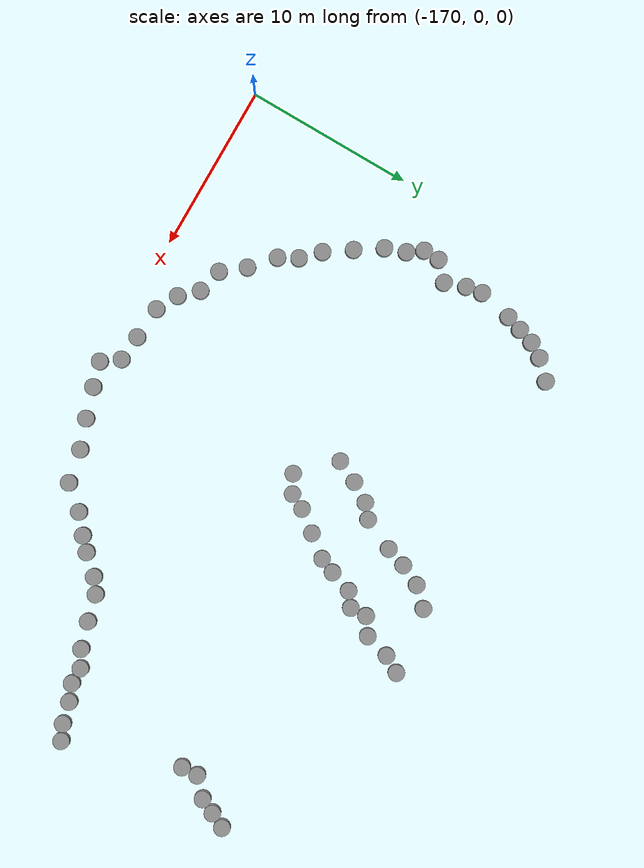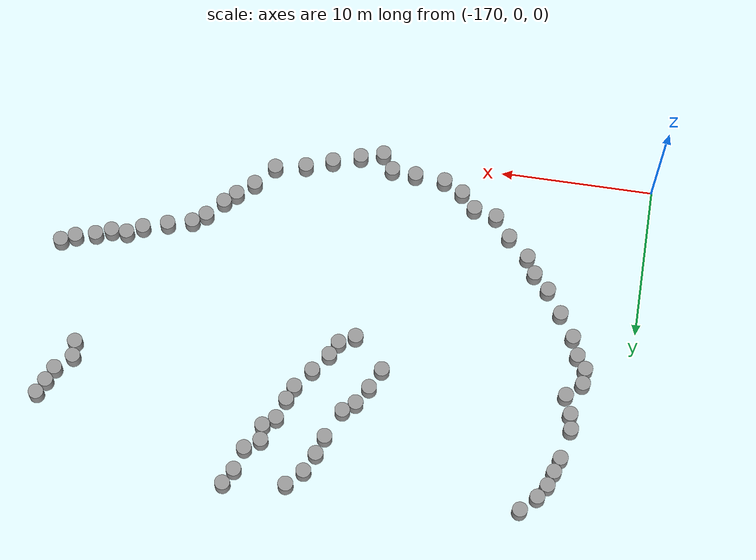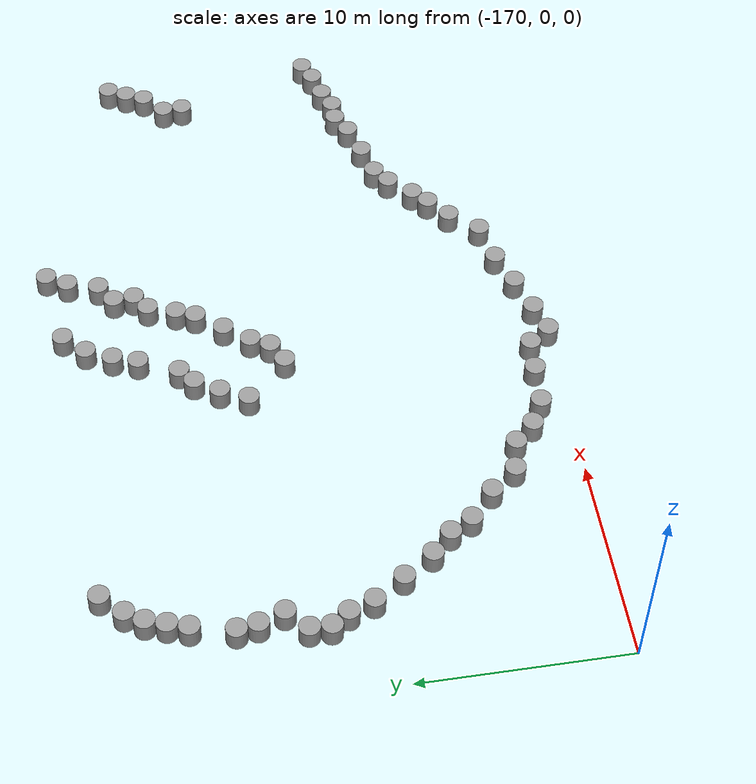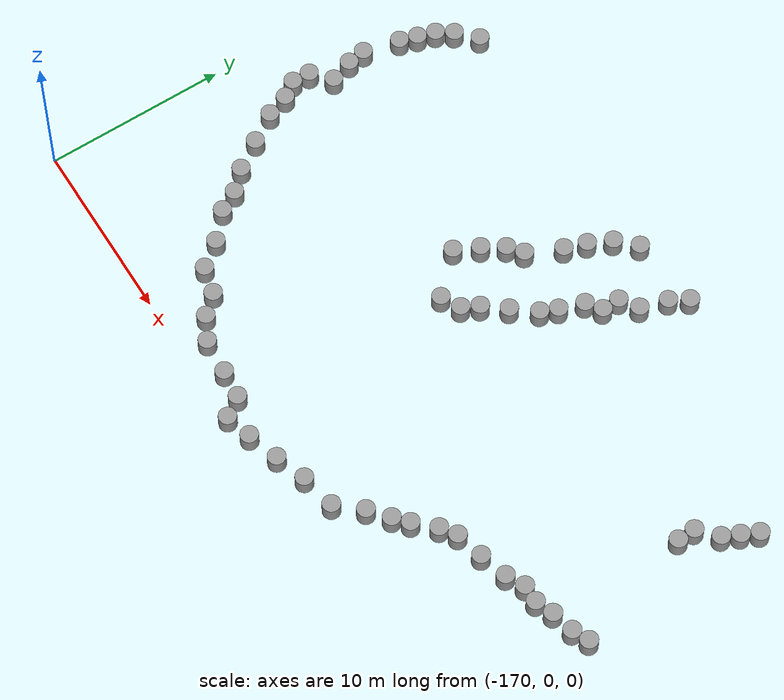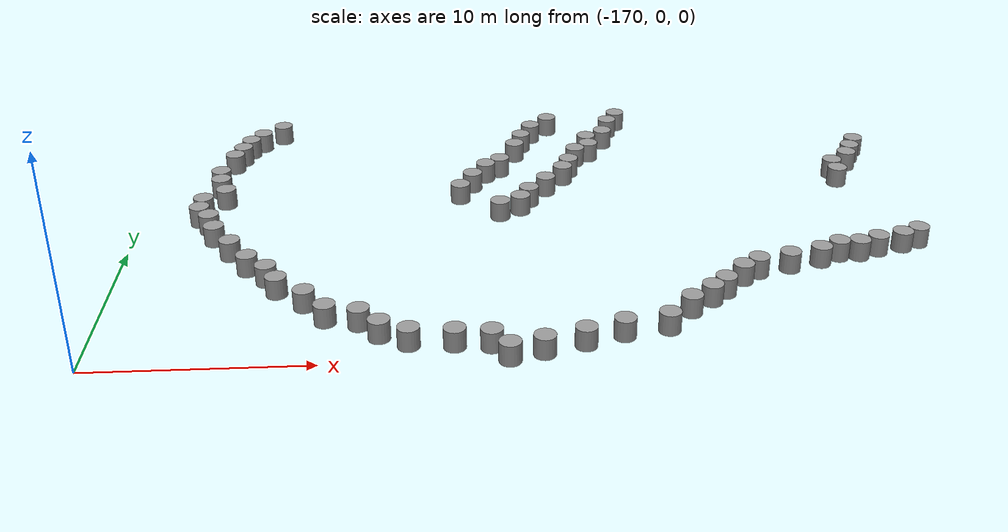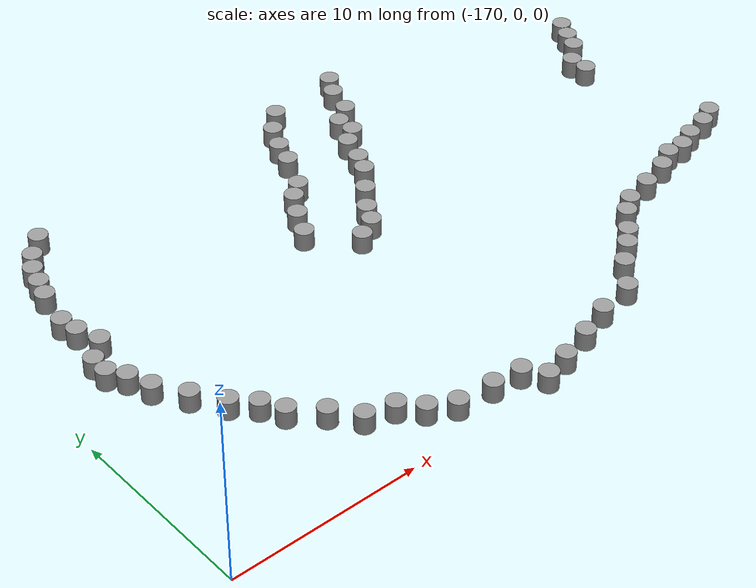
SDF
<sdf version="1.7">
 <world name="default">
  <model name="unit_cylinder_85_clone_244_clone_45">
   <pose>-149 23.4898 0.45 0 -0 7e-05</pose>
   <link name="link">
    <inertial>
     <mass>1</mass>
     <inertia><ixx>0.145833</ixx><ixy>0</ixy><ixz>0</ixz><iyy>0.145833</iyy><iyz>0</iyz><izz>0.125</izz></inertia>
    </inertial>
    <collision name="collision">
     <geometry><cylinder><radius>0.5</radius><length>1</length></cylinder></geometry>
    </collision>
    <visual name="visual">
     <geometry><cylinder><radius>0.5</radius><length>1</length></cylinder></geometry>
     <material>
      <script><name>Gazebo/Grey</name><uri>file://media/materials/scripts/gazebo.material</uri></script>
     </material>
    </visual>
   </link>
  </model>
  <model name="unit_cylinder_85_clone_244_clone_46">
   <pose>-150 22.4578 0.449998 -3e-06 -4e-06 0.000351</pose>
   <link name="link">
    <inertial>
     <mass>1</mass>
     <inertia><ixx>0.145833</ixx><ixy>0</ixy><ixz>0</ixz><iyy>0.145833</iyy><iyz>0</iyz><izz>0.125</izz></inertia>
    </inertial>
    <collision name="collision">
     <geometry><cylinder><radius>0.5</radius><length>1</length></cylinder></geometry>
    </collision>
    <visual name="visual">
     <geometry><cylinder><radius>0.5</radius><length>1</length></cylinder></geometry>
     <material>
      <script><name>Gazebo/Grey</name><uri>file://media/materials/scripts/gazebo.material</uri></script>
     </material>
    </visual>
   </link>
  </model>
  <model name="unit_cylinder_85_clone_244_clone_47">
   <pose>-150.603 21.2056 0.449998 -2e-06 -4e-06 0.000355</pose>
   <link name="link">
    <inertial>
     <mass>1</mass>
     <inertia><ixx>0.145833</ixx><ixy>0</ixy><ixz>0</ixz><iyy>0.145833</iyy><iyz>0</iyz><izz>0.125</izz></inertia>
    </inertial>
    <collision name="collision">
     <geometry><cylinder><radius>0.5</radius><length>1</length></cylinder></geometry>
    </collision>
    <visual name="visual">
     <geometry><cylinder><radius>0.5</radius><length>1</length></cylinder></geometry>
     <material>
      <script><name>Gazebo/Grey</name><uri>file://media/materials/scripts/gazebo.material</uri></script>
     </material>
    </visual>
   </link>
  </model>
  <model name="unit_cylinder_85_clone_244_clone_48">
   <pose>-151 20 0.449998 -3e-06 -2e-06 0.000351</pose>
   <link name="link">
    <inertial>
     <mass>1</mass>
     <inertia><ixx>0.145833</ixx><ixy>0</ixy><ixz>0</ixz><iyy>0.145833</iyy><iyz>0</iyz><izz>0.125</izz></inertia>
    </inertial>
    <collision name="collision">
     <geometry><cylinder><radius>0.5</radius><length>1</length></cylinder></geometry>
    </collision>
    <visual name="visual">
     <geometry><cylinder><radius>0.5</radius><length>1</length></cylinder></geometry>
     <material>
      <script><name>Gazebo/Grey</name><uri>file://media/materials/scripts/gazebo.material</uri></script>
     </material>
    </visual>
   </link>
  </model>
  <model name="unit_cylinder_85_clone_244_clone_49">
   <pose>-151.872 18.1045 0.45 0 -0 0.000316</pose>
   <link name="link">
    <inertial>
     <mass>1</mass>
     <inertia><ixx>0.145833</ixx><ixy>0</ixy><ixz>0</ixz><iyy>0.145833</iyy><iyz>0</iyz><izz>0.125</izz></inertia>
    </inertial>
    <collision name="collision">
     <geometry><cylinder><radius>0.5</radius><length>1</length></cylinder></geometry>
    </collision>
    <visual name="visual">
     <geometry><cylinder><radius>0.5</radius><length>1</length></cylinder></geometry>
     <material>
      <script><name>Gazebo/Grey</name><uri>file://media/materials/scripts/gazebo.material</uri></script>
     </material>
    </visual>
   </link>
  </model>
  <model name="unit_cylinder_85_clone_244_clone_50">
   <pose>-152.646 17.4708 0.449991 0 -0 0.000252</pose>
   <link name="link">
    <inertial>
     <mass>1</mass>
     <inertia><ixx>0.145833</ixx><ixy>0</ixy><ixz>0</ixz><iyy>0.145833</iyy><iyz>0</iyz><izz>0.125</izz></inertia>
    </inertial>
    <collision name="collision">
     <geometry><cylinder><radius>0.5</radius><length>1</length></cylinder></geometry>
    </collision>
    <visual name="visual">
     <geometry><cylinder><radius>0.5</radius><length>1</length></cylinder></geometry>
     <material>
      <script><name>Gazebo/Grey</name><uri>file://media/materials/scripts/gazebo.material</uri></script>
     </material>
    </visual>
   </link>
  </model>
  <model name="unit_cylinder_85_clone_244_clone_51">
   <pose>-153.359 16.3156 0.44999 0 -0 0.000351</pose>
   <link name="link">
    <inertial>
     <mass>1</mass>
     <inertia><ixx>0.145833</ixx><ixy>0</ixy><ixz>0</ixz><iyy>0.145833</iyy><iyz>0</iyz><izz>0.125</izz></inertia>
    </inertial>
    <collision name="collision">
     <geometry><cylinder><radius>0.5</radius><length>1</length></cylinder></geometry>
    </collision>
    <visual name="visual">
     <geometry><cylinder><radius>0.5</radius><length>1</length></cylinder></geometry>
     <material>
      <script><name>Gazebo/Grey</name><uri>file://media/materials/scripts/gazebo.material</uri></script>
     </material>
    </visual>
   </link>
  </model>
  <model name="unit_cylinder_85_clone_244_clone_52">
   <pose>-154 15 0.449998 -3e-06 -5e-06 0.000353</pose>
   <link name="link">
    <inertial>
     <mass>1</mass>
     <inertia><ixx>0.145833</ixx><ixy>0</ixy><ixz>0</ixz><iyy>0.145833</iyy><iyz>0</iyz><izz>0.125</izz></inertia>
    </inertial>
    <collision name="collision">
     <geometry><cylinder><radius>0.5</radius><length>1</length></cylinder></geometry>
    </collision>
    <visual name="visual">
     <geometry><cylinder><radius>0.5</radius><length>1</length></cylinder></geometry>
     <material>
      <script><name>Gazebo/Grey</name><uri>file://media/materials/scripts/gazebo.material</uri></script>
     </material>
    </visual>
   </link>
  </model>
  <model name="unit_cylinder_85_clone_244_clone_61">
   <pose>-145 24.0002 0.450001 -1e-06 -1e-06 0.000403</pose>
   <link name="link">
    <inertial>
     <mass>1</mass>
     <inertia><ixx>0.145833</ixx><ixy>0</ixy><ixz>0</ixz><iyy>0.145833</iyy><iyz>0</iyz><izz>0.125</izz></inertia>
    </inertial>
    <collision name="collision">
     <geometry><cylinder><radius>0.5</radius><length>1</length></cylinder></geometry>
    </collision>
    <visual name="visual">
     <geometry><cylinder><radius>0.5</radius><length>1</length></cylinder></geometry>
     <material>
      <script><name>Gazebo/Grey</name><uri>file://media/materials/scripts/gazebo.material</uri></script>
     </material>
    </visual>
   </link>
  </model>
  <model name="unit_cylinder_85_clone_244_clone_62">
   <pose>-145.571 23.0002 0.44999 0 -0 0.000516</pose>
   <link name="link">
    <inertial>
     <mass>1</mass>
     <inertia><ixx>0.145833</ixx><ixy>0</ixy><ixz>0</ixz><iyy>0.145833</iyy><iyz>0</iyz><izz>0.125</izz></inertia>
    </inertial>
    <collision name="collision">
     <geometry><cylinder><radius>0.5</radius><length>1</length></cylinder></geometry>
    </collision>
    <visual name="visual">
     <geometry><cylinder><radius>0.5</radius><length>1</length></cylinder></geometry>
     <material>
      <script><name>Gazebo/Grey</name><uri>file://media/materials/scripts/gazebo.material</uri></script>
     </material>
    </visual>
   </link>
  </model>
  <model name="unit_cylinder_85_clone_244_clone_63">
   <pose>-146 21.4918 0.450002 3e-06 -1e-06 0.000369</pose>
   <link name="link">
    <inertial>
     <mass>1</mass>
     <inertia><ixx>0.145833</ixx><ixy>0</ixy><ixz>0</ixz><iyy>0.145833</iyy><iyz>0</iyz><izz>0.125</izz></inertia>
    </inertial>
    <collision name="collision">
     <geometry><cylinder><radius>0.5</radius><length>1</length></cylinder></geometry>
    </collision>
    <visual name="visual">
     <geometry><cylinder><radius>0.5</radius><length>1</length></cylinder></geometry>
     <material>
      <script><name>Gazebo/Grey</name><uri>file://media/materials/scripts/gazebo.material</uri></script>
     </material>
    </visual>
   </link>
  </model>
  <model name="unit_cylinder_85_clone_244_clone_64">
   <pose>-146.968 20.8161 0.45 0 -0 0.049705</pose>
   <link name="link">
    <inertial>
     <mass>1</mass>
     <inertia><ixx>0.145833</ixx><ixy>0</ixy><ixz>0</ixz><iyy>0.145833</iyy><iyz>0</iyz><izz>0.125</izz></inertia>
    </inertial>
    <collision name="collision">
     <geometry><cylinder><radius>0.5</radius><length>1</length></cylinder></geometry>
    </collision>
    <visual name="visual">
     <geometry><cylinder><radius>0.5</radius><length>1</length></cylinder></geometry>
     <material>
      <script><name>Gazebo/Grey</name><uri>file://media/materials/scripts/gazebo.material</uri></script>
     </material>
    </visual>
   </link>
  </model>
  <model name="unit_cylinder_85_clone_244_clone_65">
   <pose>-146.931 19.8134 0.449998 2e-06 4e-06 -0.214574</pose>
   <link name="link">
    <inertial>
     <mass>1</mass>
     <inertia><ixx>0.145833</ixx><ixy>0</ixy><ixz>0</ixz><iyy>0.145833</iyy><iyz>0</iyz><izz>0.125</izz></inertia>
    </inertial>
    <collision name="collision">
     <geometry><cylinder><radius>0.5</radius><length>1</length></cylinder></geometry>
    </collision>
    <visual name="visual">
     <geometry><cylinder><radius>0.5</radius><length>1</length></cylinder></geometry>
     <material>
      <script><name>Gazebo/Grey</name><uri>file://media/materials/scripts/gazebo.material</uri></script>
     </material>
    </visual>
   </link>
  </model>
  <model name="unit_cylinder_85_clone_244_clone_66">
   <pose>-147.726 19.206 0.45 0 -0 0.053961</pose>
   <link name="link">
    <inertial>
     <mass>1</mass>
     <inertia><ixx>0.145833</ixx><ixy>0</ixy><ixz>0</ixz><iyy>0.145833</iyy><iyz>0</iyz><izz>0.125</izz></inertia>
    </inertial>
    <collision name="collision">
     <geometry><cylinder><radius>0.5</radius><length>1</length></cylinder></geometry>
    </collision>
    <visual name="visual">
     <geometry><cylinder><radius>0.5</radius><length>1</length></cylinder></geometry>
     <material>
      <script><name>Gazebo/Grey</name><uri>file://media/materials/scripts/gazebo.material</uri></script>
     </material>
    </visual>
   </link>
  </model>
  <model name="unit_cylinder_85_clone_244_clone_67">
   <pose>-148.18 17.8627 0.449998 -3e-06 3e-06 0.000311</pose>
   <link name="link">
    <inertial>
     <mass>1</mass>
     <inertia><ixx>0.145833</ixx><ixy>0</ixy><ixz>0</ixz><iyy>0.145833</iyy><iyz>0</iyz><izz>0.125</izz></inertia>
    </inertial>
    <collision name="collision">
     <geometry><cylinder><radius>0.5</radius><length>1</length></cylinder></geometry>
    </collision>
    <visual name="visual">
     <geometry><cylinder><radius>0.5</radius><length>1</length></cylinder></geometry>
     <material>
      <script><name>Gazebo/Grey</name><uri>file://media/materials/scripts/gazebo.material</uri></script>
     </material>
    </visual>
   </link>
  </model>
  <model name="unit_cylinder_85_clone_244_clone_68">
   <pose>-148.566 16.9402 0.449998 1e-06 6e-06 0.00033</pose>
   <link name="link">
    <inertial>
     <mass>1</mass>
     <inertia><ixx>0.145833</ixx><ixy>0</ixy><ixz>0</ixz><iyy>0.145833</iyy><iyz>0</iyz><izz>0.125</izz></inertia>
    </inertial>
    <collision name="collision">
     <geometry><cylinder><radius>0.5</radius><length>1</length></cylinder></geometry>
    </collision>
    <visual name="visual">
     <geometry><cylinder><radius>0.5</radius><length>1</length></cylinder></geometry>
     <material>
      <script><name>Gazebo/Grey</name><uri>file://media/materials/scripts/gazebo.material</uri></script>
     </material>
    </visual>
   </link>
  </model>
  <model name="unit_cylinder_85_clone_244_clone_69">
   <pose>-149.548 15.6808 0.449998 -5e-06 0 0.00041</pose>
   <link name="link">
    <inertial>
     <mass>1</mass>
     <inertia><ixx>0.145833</ixx><ixy>0</ixy><ixz>0</ixz><iyy>0.145833</iyy><iyz>0</iyz><izz>0.125</izz></inertia>
    </inertial>
    <collision name="collision">
     <geometry><cylinder><radius>0.5</radius><length>1</length></cylinder></geometry>
    </collision>
    <visual name="visual">
     <geometry><cylinder><radius>0.5</radius><length>1</length></cylinder></geometry>
     <material>
      <script><name>Gazebo/Grey</name><uri>file://media/materials/scripts/gazebo.material</uri></script>
     </material>
    </visual>
   </link>
  </model>
  <model name="unit_cylinder_85_clone_244_clone_70">
   <pose>-150.479 14.4743 0.44999 0 -0 0.000424</pose>
   <link name="link">
    <inertial>
     <mass>1</mass>
     <inertia><ixx>0.145833</ixx><ixy>0</ixy><ixz>0</ixz><iyy>0.145833</iyy><iyz>0</iyz><izz>0.125</izz></inertia>
    </inertial>
    <collision name="collision">
     <geometry><cylinder><radius>0.5</radius><length>1</length></cylinder></geometry>
    </collision>
    <visual name="visual">
     <geometry><cylinder><radius>0.5</radius><length>1</length></cylinder></geometry>
     <material>
      <script><name>Gazebo/Grey</name><uri>file://media/materials/scripts/gazebo.material</uri></script>
     </material>
    </visual>
   </link>
  </model>
  <model name="unit_cylinder_85_clone_244_clone_71">
   <pose>-152 13.0001 0.44999 0 -0 0.000457</pose>
   <link name="link">
    <inertial>
     <mass>1</mass>
     <inertia><ixx>0.145833</ixx><ixy>0</ixy><ixz>0</ixz><iyy>0.145833</iyy><iyz>0</iyz><izz>0.125</izz></inertia>
    </inertial>
    <collision name="collision">
     <geometry><cylinder><radius>0.5</radius><length>1</length></cylinder></geometry>
    </collision>
    <visual name="visual">
     <geometry><cylinder><radius>0.5</radius><length>1</length></cylinder></geometry>
     <material>
      <script><name>Gazebo/Grey</name><uri>file://media/materials/scripts/gazebo.material</uri></script>
     </material>
    </visual>
   </link>
  </model>
  <model name="unit_cylinder_85_clone_244_clone_72">
   <pose>-150.955 13.5618 0.44999 0 -0 0.000478</pose>
   <link name="link">
    <inertial>
     <mass>1</mass>
     <inertia><ixx>0.145833</ixx><ixy>0</ixy><ixz>0</ixz><iyy>0.145833</iyy><iyz>0</iyz><izz>0.125</izz></inertia>
    </inertial>
    <collision name="collision">
     <geometry><cylinder><radius>0.5</radius><length>1</length></cylinder></geometry>
    </collision>
    <visual name="visual">
     <geometry><cylinder><radius>0.5</radius><length>1</length></cylinder></geometry>
     <material>
      <script><name>Gazebo/Grey</name><uri>file://media/materials/scripts/gazebo.material</uri></script>
     </material>
    </visual>
   </link>
  </model>
  <model name="unit_cylinder_85_clone_244_clone_76">
   <pose>-132.13 19.7573 0.45127 -3e-06 -3e-06 0.009833</pose>
   <link name="link">
    <inertial>
     <mass>1</mass>
     <inertia><ixx>0.145833</ixx><ixy>0</ixy><ixz>0</ixz><iyy>0.145833</iyy><iyz>0</iyz><izz>0.125</izz></inertia>
    </inertial>
    <collision name="collision">
     <geometry><cylinder><radius>0.5</radius><length>1</length></cylinder></geometry>
    </collision>
    <visual name="visual">
     <geometry><cylinder><radius>0.5</radius><length>1</length></cylinder></geometry>
     <material>
      <script><name>Gazebo/Grey</name><uri>file://media/materials/scripts/gazebo.material</uri></script>
     </material>
    </visual>
   </link>
  </model>
  <model name="unit_cylinder_85_clone_244_clone_77">
   <pose>-132.576 18.8518 0.451277 -0 -1e-06 0.027749</pose>
   <link name="link">
    <inertial>
     <mass>1</mass>
     <inertia><ixx>0.145833</ixx><ixy>0</ixy><ixz>0</ixz><iyy>0.145833</iyy><iyz>0</iyz><izz>0.125</izz></inertia>
    </inertial>
    <collision name="collision">
     <geometry><cylinder><radius>0.5</radius><length>1</length></cylinder></geometry>
    </collision>
    <visual name="visual">
     <geometry><cylinder><radius>0.5</radius><length>1</length></cylinder></geometry>
     <material>
      <script><name>Gazebo/Grey</name><uri>file://media/materials/scripts/gazebo.material</uri></script>
     </material>
    </visual>
   </link>
  </model>
  <model name="unit_cylinder_85_clone_244_clone_78">
   <pose>-133.002 17.946 0.451271 2e-06 2e-06 -0.000531</pose>
   <link name="link">
    <inertial>
     <mass>1</mass>
     <inertia><ixx>0.145833</ixx><ixy>0</ixy><ixz>0</ixz><iyy>0.145833</iyy><iyz>0</iyz><izz>0.125</izz></inertia>
    </inertial>
    <collision name="collision">
     <geometry><cylinder><radius>0.5</radius><length>1</length></cylinder></geometry>
    </collision>
    <visual name="visual">
     <geometry><cylinder><radius>0.5</radius><length>1</length></cylinder></geometry>
     <material>
      <script><name>Gazebo/Grey</name><uri>file://media/materials/scripts/gazebo.material</uri></script>
     </material>
    </visual>
   </link>
  </model>
  <model name="unit_cylinder_85_clone_244_clone_79">
   <pose>-134.037 16.9881 0.451282 -8e-06 -9e-06 -0.000137</pose>
   <link name="link">
    <inertial>
     <mass>1</mass>
     <inertia><ixx>0.145833</ixx><ixy>0</ixy><ixz>0</ixz><iyy>0.145833</iyy><iyz>0</iyz><izz>0.125</izz></inertia>
    </inertial>
    <collision name="collision">
     <geometry><cylinder><radius>0.5</radius><length>1</length></cylinder></geometry>
    </collision>
    <visual name="visual">
     <geometry><cylinder><radius>0.5</radius><length>1</length></cylinder></geometry>
     <material>
      <script><name>Gazebo/Grey</name><uri>file://media/materials/scripts/gazebo.material</uri></script>
     </material>
    </visual>
   </link>
  </model>
  <model name="unit_cylinder_85_clone_244_clone_80">
   <pose>-134 15.9888 0.451279 -9e-06 -9e-06 0.001202</pose>
   <link name="link">
    <inertial>
     <mass>1</mass>
     <inertia><ixx>0.145833</ixx><ixy>0</ixy><ixz>0</ixz><iyy>0.145833</iyy><iyz>0</iyz><izz>0.125</izz></inertia>
    </inertial>
    <collision name="collision">
     <geometry><cylinder><radius>0.5</radius><length>1</length></cylinder></geometry>
    </collision>
    <visual name="visual">
     <geometry><cylinder><radius>0.5</radius><length>1</length></cylinder></geometry>
     <material>
      <script><name>Gazebo/Grey</name><uri>file://media/materials/scripts/gazebo.material</uri></script>
     </material>
    </visual>
   </link>
  </model>
  <model name="unit_cylinder_85_clone_244_clone_86">
   <pose>-131.803 9.15012 0.451246 -3e-06 2e-06 -0.052648</pose>
   <link name="link">
    <inertial>
     <mass>1</mass>
     <inertia><ixx>0.145833</ixx><ixy>0</ixy><ixz>0</ixz><iyy>0.145833</iyy><iyz>0</iyz><izz>0.125</izz></inertia>
    </inertial>
    <collision name="collision">
     <geometry><cylinder><radius>0.5</radius><length>1</length></cylinder></geometry>
    </collision>
    <visual name="visual">
     <geometry><cylinder><radius>0.5</radius><length>1</length></cylinder></geometry>
     <material>
      <script><name>Gazebo/Grey</name><uri>file://media/materials/scripts/gazebo.material</uri></script>
     </material>
    </visual>
   </link>
  </model>
  <model name="unit_cylinder_85_clone_244_clone_87">
   <pose>-132.711 8.72598 0.451246 0 3e-06 0.048735</pose>
   <link name="link">
    <inertial>
     <mass>1</mass>
     <inertia><ixx>0.145833</ixx><ixy>0</ixy><ixz>0</ixz><iyy>0.145833</iyy><iyz>0</iyz><izz>0.125</izz></inertia>
    </inertial>
    <collision name="collision">
     <geometry><cylinder><radius>0.5</radius><length>1</length></cylinder></geometry>
    </collision>
    <visual name="visual">
     <geometry><cylinder><radius>0.5</radius><length>1</length></cylinder></geometry>
     <material>
      <script><name>Gazebo/Grey</name><uri>file://media/materials/scripts/gazebo.material</uri></script>
     </material>
    </visual>
   </link>
  </model>
  <model name="unit_cylinder_85_clone_244_clone_88">
   <pose>-134 8.40413 0.451249 3e-06 5e-06 0.000381</pose>
   <link name="link">
    <inertial>
     <mass>1</mass>
     <inertia><ixx>0.145833</ixx><ixy>0</ixy><ixz>0</ixz><iyy>0.145833</iyy><iyz>0</iyz><izz>0.125</izz></inertia>
    </inertial>
    <collision name="collision">
     <geometry><cylinder><radius>0.5</radius><length>1</length></cylinder></geometry>
    </collision>
    <visual name="visual">
     <geometry><cylinder><radius>0.5</radius><length>1</length></cylinder></geometry>
     <material>
      <script><name>Gazebo/Grey</name><uri>file://media/materials/scripts/gazebo.material</uri></script>
     </material>
    </visual>
   </link>
  </model>
  <model name="unit_cylinder_85_clone_244_clone_89">
   <pose>-135 8 0.451247 -8e-06 -3e-06 0.000408</pose>
   <link name="link">
    <inertial>
     <mass>1</mass>
     <inertia><ixx>0.145833</ixx><ixy>0</ixy><ixz>0</ixz><iyy>0.145833</iyy><iyz>0</iyz><izz>0.125</izz></inertia>
    </inertial>
    <collision name="collision">
     <geometry><cylinder><radius>0.5</radius><length>1</length></cylinder></geometry>
    </collision>
    <visual name="visual">
     <geometry><cylinder><radius>0.5</radius><length>1</length></cylinder></geometry>
     <material>
      <script><name>Gazebo/Grey</name><uri>file://media/materials/scripts/gazebo.material</uri></script>
     </material>
    </visual>
   </link>
  </model>
  <model name="unit_cylinder_85_clone_244_clone_90">
   <pose>-136 7.99997 0.451239 2e-06 -1e-06 0.000262</pose>
   <link name="link">
    <inertial>
     <mass>1</mass>
     <inertia><ixx>0.145833</ixx><ixy>0</ixy><ixz>0</ixz><iyy>0.145833</iyy><iyz>0</iyz><izz>0.125</izz></inertia>
    </inertial>
    <collision name="collision">
     <geometry><cylinder><radius>0.5</radius><length>1</length></cylinder></geometry>
    </collision>
    <visual name="visual">
     <geometry><cylinder><radius>0.5</radius><length>1</length></cylinder></geometry>
     <material>
      <script><name>Gazebo/Grey</name><uri>file://media/materials/scripts/gazebo.material</uri></script>
     </material>
    </visual>
   </link>
  </model>
  <model name="unit_cylinder_85_clone_244_clone_91">
   <pose>-137 7.46964 0.451248 0 6e-06 0.000808</pose>
   <link name="link">
    <inertial>
     <mass>1</mass>
     <inertia><ixx>0.145833</ixx><ixy>0</ixy><ixz>0</ixz><iyy>0.145833</iyy><iyz>0</iyz><izz>0.125</izz></inertia>
    </inertial>
    <collision name="collision">
     <geometry><cylinder><radius>0.5</radius><length>1</length></cylinder></geometry>
    </collision>
    <visual name="visual">
     <geometry><cylinder><radius>0.5</radius><length>1</length></cylinder></geometry>
     <material>
      <script><name>Gazebo/Grey</name><uri>file://media/materials/scripts/gazebo.material</uri></script>
     </material>
    </visual>
   </link>
  </model>
  <model name="unit_cylinder_85_clone_244_clone_92">
   <pose>-138.58 7.00009 0.451243 0 -1e-06 0.000736</pose>
   <link name="link">
    <inertial>
     <mass>1</mass>
     <inertia><ixx>0.145833</ixx><ixy>0</ixy><ixz>0</ixz><iyy>0.145833</iyy><iyz>0</iyz><izz>0.125</izz></inertia>
    </inertial>
    <collision name="collision">
     <geometry><cylinder><radius>0.5</radius><length>1</length></cylinder></geometry>
    </collision>
    <visual name="visual">
     <geometry><cylinder><radius>0.5</radius><length>1</length></cylinder></geometry>
     <material>
      <script><name>Gazebo/Grey</name><uri>file://media/materials/scripts/gazebo.material</uri></script>
     </material>
    </visual>
   </link>
  </model>
  <model name="unit_cylinder_85_clone_244_clone_93">
   <pose>-140.163 6.59619 0.451238 0 -4e-06 0.000466</pose>
   <link name="link">
    <inertial>
     <mass>1</mass>
     <inertia><ixx>0.145833</ixx><ixy>0</ixy><ixz>0</ixz><iyy>0.145833</iyy><iyz>0</iyz><izz>0.125</izz></inertia>
    </inertial>
    <collision name="collision">
     <geometry><cylinder><radius>0.5</radius><length>1</length></cylinder></geometry>
    </collision>
    <visual name="visual">
     <geometry><cylinder><radius>0.5</radius><length>1</length></cylinder></geometry>
     <material>
      <script><name>Gazebo/Grey</name><uri>file://media/materials/scripts/gazebo.material</uri></script>
     </material>
    </visual>
   </link>
  </model>
  <model name="unit_cylinder_85_clone_244_clone_94">
   <pose>-141 5.99993 0.451259 2.7e-05 2.5e-05 -0.000386</pose>
   <link name="link">
    <inertial>
     <mass>1</mass>
     <inertia><ixx>0.145833</ixx><ixy>0</ixy><ixz>0</ixz><iyy>0.145833</iyy><iyz>0</iyz><izz>0.125</izz></inertia>
    </inertial>
    <collision name="collision">
     <geometry><cylinder><radius>0.5</radius><length>1</length></cylinder></geometry>
    </collision>
    <visual name="visual">
     <geometry><cylinder><radius>0.5</radius><length>1</length></cylinder></geometry>
     <material>
      <script><name>Gazebo/Grey</name><uri>file://media/materials/scripts/gazebo.material</uri></script>
     </material>
    </visual>
   </link>
  </model>
  <model name="unit_cylinder_85_clone_244_clone_95">
   <pose>-142.014 4.91533 0.451245 2.1e-05 2e-05 0.001099</pose>
   <link name="link">
    <inertial>
     <mass>1</mass>
     <inertia><ixx>0.145833</ixx><ixy>0</ixy><ixz>0</ixz><iyy>0.145833</iyy><iyz>0</iyz><izz>0.125</izz></inertia>
    </inertial>
    <collision name="collision">
     <geometry><cylinder><radius>0.5</radius><length>1</length></cylinder></geometry>
    </collision>
    <visual name="visual">
     <geometry><cylinder><radius>0.5</radius><length>1</length></cylinder></geometry>
     <material>
      <script><name>Gazebo/Grey</name><uri>file://media/materials/scripts/gazebo.material</uri></script>
     </material>
    </visual>
   </link>
  </model>
  <model name="unit_cylinder_85_clone_244_clone_96">
   <pose>-142.751 4.23773 0.451252 1.8e-05 1.7e-05 -0.001185</pose>
   <link name="link">
    <inertial>
     <mass>1</mass>
     <inertia><ixx>0.145833</ixx><ixy>0</ixy><ixz>0</ixz><iyy>0.145833</iyy><iyz>0</iyz><izz>0.125</izz></inertia>
    </inertial>
    <collision name="collision">
     <geometry><cylinder><radius>0.5</radius><length>1</length></cylinder></geometry>
    </collision>
    <visual name="visual">
     <geometry><cylinder><radius>0.5</radius><length>1</length></cylinder></geometry>
     <material>
      <script><name>Gazebo/Grey</name><uri>file://media/materials/scripts/gazebo.material</uri></script>
     </material>
    </visual>
   </link>
  </model>
  <model name="unit_cylinder_85_clone_244_clone_97">
   <pose>-143.825 3.35352 0.451257 3.2e-05 3.2e-05 -0.000823</pose>
   <link name="link">
    <inertial>
     <mass>1</mass>
     <inertia><ixx>0.145833</ixx><ixy>0</ixy><ixz>0</ixz><iyy>0.145833</iyy><iyz>0</iyz><izz>0.125</izz></inertia>
    </inertial>
    <collision name="collision">
     <geometry><cylinder><radius>0.5</radius><length>1</length></cylinder></geometry>
    </collision>
    <visual name="visual">
     <geometry><cylinder><radius>0.5</radius><length>1</length></cylinder></geometry>
     <material>
      <script><name>Gazebo/Grey</name><uri>file://media/materials/scripts/gazebo.material</uri></script>
     </material>
    </visual>
   </link>
  </model>
  <model name="unit_cylinder_85_clone_244_clone_98">
   <pose>-145 1.99999 0.451239 -4e-06 6e-06 0.000544</pose>
   <link name="link">
    <inertial>
     <mass>1</mass>
     <inertia><ixx>0.145833</ixx><ixy>0</ixy><ixz>0</ixz><iyy>0.145833</iyy><iyz>0</iyz><izz>0.125</izz></inertia>
    </inertial>
    <collision name="collision">
     <geometry><cylinder><radius>0.5</radius><length>1</length></cylinder></geometry>
    </collision>
    <visual name="visual">
     <geometry><cylinder><radius>0.5</radius><length>1</length></cylinder></geometry>
     <material>
      <script><name>Gazebo/Grey</name><uri>file://media/materials/scripts/gazebo.material</uri></script>
     </material>
    </visual>
   </link>
  </model>
  <model name="unit_cylinder_85_clone_244_clone_99">
   <pose>-147 1.59762 0.451249 6e-06 5e-06 0.000819</pose>
   <link name="link">
    <inertial>
     <mass>1</mass>
     <inertia><ixx>0.145833</ixx><ixy>0</ixy><ixz>0</ixz><iyy>0.145833</iyy><iyz>0</iyz><izz>0.125</izz></inertia>
    </inertial>
    <collision name="collision">
     <geometry><cylinder><radius>0.5</radius><length>1</length></cylinder></geometry>
    </collision>
    <visual name="visual">
     <geometry><cylinder><radius>0.5</radius><length>1</length></cylinder></geometry>
     <material>
      <script><name>Gazebo/Grey</name><uri>file://media/materials/scripts/gazebo.material</uri></script>
     </material>
    </visual>
   </link>
  </model>
  <model name="unit_cylinder_85_clone_244_clone_100">
   <pose>-148.726 0.984871 0.451241 -1e-06 2e-06 0.000874</pose>
   <link name="link">
    <inertial>
     <mass>1</mass>
     <inertia><ixx>0.145833</ixx><ixy>0</ixy><ixz>0</ixz><iyy>0.145833</iyy><iyz>0</iyz><izz>0.125</izz></inertia>
    </inertial>
    <collision name="collision">
     <geometry><cylinder><radius>0.5</radius><length>1</length></cylinder></geometry>
    </collision>
    <visual name="visual">
     <geometry><cylinder><radius>0.5</radius><length>1</length></cylinder></geometry>
     <material>
      <script><name>Gazebo/Grey</name><uri>file://media/materials/scripts/gazebo.material</uri></script>
     </material>
    </visual>
   </link>
  </model>
  <model name="unit_cylinder_85_clone_244_clone_101">
   <pose>-150.523 0.423107 0.453117 -0.00044 0.003329 0.000432</pose>
   <link name="link">
    <inertial>
     <mass>1</mass>
     <inertia><ixx>0.145833</ixx><ixy>0</ixy><ixz>0</ixz><iyy>0.145833</iyy><iyz>0</iyz><izz>0.125</izz></inertia>
    </inertial>
    <collision name="collision">
     <geometry><cylinder><radius>0.5</radius><length>1</length></cylinder></geometry>
    </collision>
    <visual name="visual">
     <geometry><cylinder><radius>0.5</radius><length>1</length></cylinder></geometry>
     <material>
      <script><name>Gazebo/Grey</name><uri>file://media/materials/scripts/gazebo.material</uri></script>
     </material>
    </visual>
   </link>
  </model>
  <model name="unit_cylinder_85_clone_244_clone_102">
   <pose>-151.999 0.004916 0.457406 -0.005044 0.00059 0.000384</pose>
   <link name="link">
    <inertial>
     <mass>1</mass>
     <inertia><ixx>0.145833</ixx><ixy>0</ixy><ixz>0</ixz><iyy>0.145833</iyy><iyz>0</iyz><izz>0.125</izz></inertia>
    </inertial>
    <collision name="collision">
     <geometry><cylinder><radius>0.5</radius><length>1</length></cylinder></geometry>
    </collision>
    <visual name="visual">
     <geometry><cylinder><radius>0.5</radius><length>1</length></cylinder></geometry>
     <material>
      <script><name>Gazebo/Grey</name><uri>file://media/materials/scripts/gazebo.material</uri></script>
     </material>
    </visual>
   </link>
  </model>
  <model name="unit_cylinder_85_clone_244_clone_103">
   <pose>-152.735 1.03926 0.452901 -0.004451 0.00051 0.000946</pose>
   <link name="link">
    <inertial>
     <mass>1</mass>
     <inertia><ixx>0.145833</ixx><ixy>0</ixy><ixz>0</ixz><iyy>0.145833</iyy><iyz>0</iyz><izz>0.125</izz></inertia>
    </inertial>
    <collision name="collision">
     <geometry><cylinder><radius>0.5</radius><length>1</length></cylinder></geometry>
    </collision>
    <visual name="visual">
     <geometry><cylinder><radius>0.5</radius><length>1</length></cylinder></geometry>
     <material>
      <script><name>Gazebo/Grey</name><uri>file://media/materials/scripts/gazebo.material</uri></script>
     </material>
    </visual>
   </link>
  </model>
  <model name="unit_cylinder_85_clone_244_clone_104">
   <pose>-154.313 1.17961 0.453583 -0.004532 0.001025 0.000662</pose>
   <link name="link">
    <inertial>
     <mass>1</mass>
     <inertia><ixx>0.145833</ixx><ixy>0</ixy><ixz>0</ixz><iyy>0.145833</iyy><iyz>0</iyz><izz>0.125</izz></inertia>
    </inertial>
    <collision name="collision">
     <geometry><cylinder><radius>0.5</radius><length>1</length></cylinder></geometry>
    </collision>
    <visual name="visual">
     <geometry><cylinder><radius>0.5</radius><length>1</length></cylinder></geometry>
     <material>
      <script><name>Gazebo/Grey</name><uri>file://media/materials/scripts/gazebo.material</uri></script>
     </material>
    </visual>
   </link>
  </model>
  <model name="unit_cylinder_85_clone_244_clone_105">
   <pose>-156.278 1.32738 0.454821 -0.005013 0.001254 0.000472</pose>
   <link name="link">
    <inertial>
     <mass>1</mass>
     <inertia><ixx>0.145833</ixx><ixy>0</ixy><ixz>0</ixz><iyy>0.145833</iyy><iyz>0</iyz><izz>0.125</izz></inertia>
    </inertial>
    <collision name="collision">
     <geometry><cylinder><radius>0.5</radius><length>1</length></cylinder></geometry>
    </collision>
    <visual name="visual">
     <geometry><cylinder><radius>0.5</radius><length>1</length></cylinder></geometry>
     <material>
      <script><name>Gazebo/Grey</name><uri>file://media/materials/scripts/gazebo.material</uri></script>
     </material>
    </visual>
   </link>
  </model>
  <model name="unit_cylinder_85_clone_244_clone_106">
   <pose>-157.558 2.0057 0.454785 -0.004281 0.002965 0.000445</pose>
   <link name="link">
    <inertial>
     <mass>1</mass>
     <inertia><ixx>0.145833</ixx><ixy>0</ixy><ixz>0</ixz><iyy>0.145833</iyy><iyz>0</iyz><izz>0.125</izz></inertia>
    </inertial>
    <collision name="collision">
     <geometry><cylinder><radius>0.5</radius><length>1</length></cylinder></geometry>
    </collision>
    <visual name="visual">
     <geometry><cylinder><radius>0.5</radius><length>1</length></cylinder></geometry>
     <material>
      <script><name>Gazebo/Grey</name><uri>file://media/materials/scripts/gazebo.material</uri></script>
     </material>
    </visual>
   </link>
  </model>
  <model name="unit_cylinder_85_clone_244_clone_107">
   <pose>-158.492 3.00244 0.453468 -0.00394 0.00266 -0.001028</pose>
   <link name="link">
    <inertial>
     <mass>1</mass>
     <inertia><ixx>0.145833</ixx><ixy>0</ixy><ixz>0</ixz><iyy>0.145833</iyy><iyz>0</iyz><izz>0.125</izz></inertia>
    </inertial>
    <collision name="collision">
     <geometry><cylinder><radius>0.5</radius><length>1</length></cylinder></geometry>
    </collision>
    <visual name="visual">
     <geometry><cylinder><radius>0.5</radius><length>1</length></cylinder></geometry>
     <material>
      <script><name>Gazebo/Grey</name><uri>file://media/materials/scripts/gazebo.material</uri></script>
     </material>
    </visual>
   </link>
  </model>
  <model name="unit_cylinder_85_clone_244_clone_108">
   <pose>-159.991 3.37444 0.456017 -0.004383 0.002973 0.000641</pose>
   <link name="link">
    <inertial>
     <mass>1</mass>
     <inertia><ixx>0.145833</ixx><ixy>0</ixy><ixz>0</ixz><iyy>0.145833</iyy><iyz>0</iyz><izz>0.125</izz></inertia>
    </inertial>
    <collision name="collision">
     <geometry><cylinder><radius>0.5</radius><length>1</length></cylinder></geometry>
    </collision>
    <visual name="visual">
     <geometry><cylinder><radius>0.5</radius><length>1</length></cylinder></geometry>
     <material>
      <script><name>Gazebo/Grey</name><uri>file://media/materials/scripts/gazebo.material</uri></script>
     </material>
    </visual>
   </link>
  </model>
  <model name="unit_cylinder_85_clone_244_clone_109">
   <pose>-161.029 4.68129 0.454001 -0.004136 0.003469 0.000444</pose>
   <link name="link">
    <inertial>
     <mass>1</mass>
     <inertia><ixx>0.145833</ixx><ixy>0</ixy><ixz>0</ixz><iyy>0.145833</iyy><iyz>0</iyz><izz>0.125</izz></inertia>
    </inertial>
    <collision name="collision">
     <geometry><cylinder><radius>0.5</radius><length>1</length></cylinder></geometry>
    </collision>
    <visual name="visual">
     <geometry><cylinder><radius>0.5</radius><length>1</length></cylinder></geometry>
     <material>
      <script><name>Gazebo/Grey</name><uri>file://media/materials/scripts/gazebo.material</uri></script>
     </material>
    </visual>
   </link>
  </model>
  <model name="unit_cylinder_85_clone_244_clone_110">
   <pose>-162.398 5.90399 0.453825 -0.003901 0.003301 0.004158</pose>
   <link name="link">
    <inertial>
     <mass>1</mass>
     <inertia><ixx>0.145833</ixx><ixy>0</ixy><ixz>0</ixz><iyy>0.145833</iyy><iyz>0</iyz><izz>0.125</izz></inertia>
    </inertial>
    <collision name="collision">
     <geometry><cylinder><radius>0.5</radius><length>1</length></cylinder></geometry>
    </collision>
    <visual name="visual">
     <geometry><cylinder><radius>0.5</radius><length>1</length></cylinder></geometry>
     <material>
      <script><name>Gazebo/Grey</name><uri>file://media/materials/scripts/gazebo.material</uri></script>
     </material>
    </visual>
   </link>
  </model>
  <model name="unit_cylinder_85_clone_244_clone_111">
   <pose>-162.998 7.00195 0.451897 -0.002819 0.003096 7.8e-05</pose>
   <link name="link">
    <inertial>
     <mass>1</mass>
     <inertia><ixx>0.145833</ixx><ixy>0</ixy><ixz>0</ixz><iyy>0.145833</iyy><iyz>0</iyz><izz>0.125</izz></inertia>
    </inertial>
    <collision name="collision">
     <geometry><cylinder><radius>0.5</radius><length>1</length></cylinder></geometry>
    </collision>
    <visual name="visual">
     <geometry><cylinder><radius>0.5</radius><length>1</length></cylinder></geometry>
     <material>
      <script><name>Gazebo/Grey</name><uri>file://media/materials/scripts/gazebo.material</uri></script>
     </material>
    </visual>
   </link>
  </model>
  <model name="unit_cylinder_85_clone_244_clone_112">
   <pose>-163.997 8.00144 0.453434 -0.002324 0.004351 0.000486</pose>
   <link name="link">
    <inertial>
     <mass>1</mass>
     <inertia><ixx>0.145833</ixx><ixy>0</ixy><ixz>0</ixz><iyy>0.145833</iyy><iyz>0</iyz><izz>0.125</izz></inertia>
    </inertial>
    <collision name="collision">
     <geometry><cylinder><radius>0.5</radius><length>1</length></cylinder></geometry>
    </collision>
    <visual name="visual">
     <geometry><cylinder><radius>0.5</radius><length>1</length></cylinder></geometry>
     <material>
      <script><name>Gazebo/Grey</name><uri>file://media/materials/scripts/gazebo.material</uri></script>
     </material>
    </visual>
   </link>
  </model>
  <model name="unit_cylinder_85_clone_244_clone_113">
   <pose>-165.012 9.49992 0.454205 -0.002609 0.004888 0.000483</pose>
   <link name="link">
    <inertial>
     <mass>1</mass>
     <inertia><ixx>0.145833</ixx><ixy>0</ixy><ixz>0</ixz><iyy>0.145833</iyy><iyz>0</iyz><izz>0.125</izz></inertia>
    </inertial>
    <collision name="collision">
     <geometry><cylinder><radius>0.5</radius><length>1</length></cylinder></geometry>
    </collision>
    <visual name="visual">
     <geometry><cylinder><radius>0.5</radius><length>1</length></cylinder></geometry>
     <material>
      <script><name>Gazebo/Grey</name><uri>file://media/materials/scripts/gazebo.material</uri></script>
     </material>
    </visual>
   </link>
  </model>
  <model name="unit_cylinder_85_clone_244_clone_114">
   <pose>-165.996 11.0021 0.455102 -0.002613 0.004885 0.000719</pose>
   <link name="link">
    <inertial>
     <mass>1</mass>
     <inertia><ixx>0.145833</ixx><ixy>0</ixy><ixz>0</ixz><iyy>0.145833</iyy><iyz>0</iyz><izz>0.125</izz></inertia>
    </inertial>
    <collision name="collision">
     <geometry><cylinder><radius>0.5</radius><length>1</length></cylinder></geometry>
    </collision>
    <visual name="visual">
     <geometry><cylinder><radius>0.5</radius><length>1</length></cylinder></geometry>
     <material>
      <script><name>Gazebo/Grey</name><uri>file://media/materials/scripts/gazebo.material</uri></script>
     </material>
    </visual>
   </link>
  </model>
  <model name="unit_cylinder_85_clone_244_clone_115">
   <pose>-166.437 12.2223 0.454728 -0.001506 0.005175 -0.035564</pose>
   <link name="link">
    <inertial>
     <mass>1</mass>
     <inertia><ixx>0.145833</ixx><ixy>0</ixy><ixz>0</ixz><iyy>0.145833</iyy><iyz>0</iyz><izz>0.125</izz></inertia>
    </inertial>
    <collision name="collision">
     <geometry><cylinder><radius>0.5</radius><length>1</length></cylinder></geometry>
    </collision>
    <visual name="visual">
     <geometry><cylinder><radius>0.5</radius><length>1</length></cylinder></geometry>
     <material>
      <script><name>Gazebo/Grey</name><uri>file://media/materials/scripts/gazebo.material</uri></script>
     </material>
    </visual>
   </link>
  </model>
  <model name="unit_cylinder_85_clone_244_clone_116">
   <pose>-167.031 13.0639 0.457325 0.000423 0.005533 0.086419</pose>
   <link name="link">
    <inertial>
     <mass>1</mass>
     <inertia><ixx>0.145833</ixx><ixy>0</ixy><ixz>0</ixz><iyy>0.145833</iyy><iyz>0</iyz><izz>0.125</izz></inertia>
    </inertial>
    <collision name="collision">
     <geometry><cylinder><radius>0.5</radius><length>1</length></cylinder></geometry>
    </collision>
    <visual name="visual">
     <geometry><cylinder><radius>0.5</radius><length>1</length></cylinder></geometry>
     <material>
      <script><name>Gazebo/Grey</name><uri>file://media/materials/scripts/gazebo.material</uri></script>
     </material>
    </visual>
   </link>
  </model>
  <model name="unit_cylinder_85_clone_244_clone_117">
   <pose>-166.993 14.0638 0.457065 -0.000114 0.005558 -0.00793</pose>
   <link name="link">
    <inertial>
     <mass>1</mass>
     <inertia><ixx>0.145833</ixx><ixy>0</ixy><ixz>0</ixz><iyy>0.145833</iyy><iyz>0</iyz><izz>0.125</izz></inertia>
    </inertial>
    <collision name="collision">
     <geometry><cylinder><radius>0.5</radius><length>1</length></cylinder></geometry>
    </collision>
    <visual name="visual">
     <geometry><cylinder><radius>0.5</radius><length>1</length></cylinder></geometry>
     <material>
      <script><name>Gazebo/Grey</name><uri>file://media/materials/scripts/gazebo.material</uri></script>
     </material>
    </visual>
   </link>
  </model>
  <model name="unit_cylinder_85_clone_244_clone_118">
   <pose>-165.997 14.9999 0.451825 -6.6e-05 0.004751 6.3e-05</pose>
   <link name="link">
    <inertial>
     <mass>1</mass>
     <inertia><ixx>0.145833</ixx><ixy>0</ixy><ixz>0</ixz><iyy>0.145833</iyy><iyz>0</iyz><izz>0.125</izz></inertia>
    </inertial>
    <collision name="collision">
     <geometry><cylinder><radius>0.5</radius><length>1</length></cylinder></geometry>
    </collision>
    <visual name="visual">
     <geometry><cylinder><radius>0.5</radius><length>1</length></cylinder></geometry>
     <material>
      <script><name>Gazebo/Grey</name><uri>file://media/materials/scripts/gazebo.material</uri></script>
     </material>
    </visual>
   </link>
  </model>
  <model name="unit_cylinder_85_clone_244_clone_119">
   <pose>-166.435 16.233 0.454207 0.00032 0.005806 -0.096256</pose>
   <link name="link">
    <inertial>
     <mass>1</mass>
     <inertia><ixx>0.145833</ixx><ixy>0</ixy><ixz>0</ixz><iyy>0.145833</iyy><iyz>0</iyz><izz>0.125</izz></inertia>
    </inertial>
    <collision name="collision">
     <geometry><cylinder><radius>0.5</radius><length>1</length></cylinder></geometry>
    </collision>
    <visual name="visual">
     <geometry><cylinder><radius>0.5</radius><length>1</length></cylinder></geometry>
     <material>
      <script><name>Gazebo/Grey</name><uri>file://media/materials/scripts/gazebo.material</uri></script>
     </material>
    </visual>
   </link>
  </model>
  <model name="unit_cylinder_85_clone_244_clone_120">
   <pose>-166.591 17.2208 0.455585 0.000809 0.005444 -0.018152</pose>
   <link name="link">
    <inertial>
     <mass>1</mass>
     <inertia><ixx>0.145833</ixx><ixy>0</ixy><ixz>0</ixz><iyy>0.145833</iyy><iyz>0</iyz><izz>0.125</izz></inertia>
    </inertial>
    <collision name="collision">
     <geometry><cylinder><radius>0.5</radius><length>1</length></cylinder></geometry>
    </collision>
    <visual name="visual">
     <geometry><cylinder><radius>0.5</radius><length>1</length></cylinder></geometry>
     <material>
      <script><name>Gazebo/Grey</name><uri>file://media/materials/scripts/gazebo.material</uri></script>
     </material>
    </visual>
   </link>
  </model>
  <model name="unit_cylinder_85_clone_244_clone_121">
   <pose>-166.152 19.2391 0.455781 0.001663 0.005377 -0.026098</pose>
   <link name="link">
    <inertial>
     <mass>1</mass>
     <inertia><ixx>0.145833</ixx><ixy>0</ixy><ixz>0</ixz><iyy>0.145833</iyy><iyz>0</iyz><izz>0.125</izz></inertia>
    </inertial>
    <collision name="collision">
     <geometry><cylinder><radius>0.5</radius><length>1</length></cylinder></geometry>
    </collision>
    <visual name="visual">
     <geometry><cylinder><radius>0.5</radius><length>1</length></cylinder></geometry>
     <material>
      <script><name>Gazebo/Grey</name><uri>file://media/materials/scripts/gazebo.material</uri></script>
     </material>
    </visual>
   </link>
  </model>
  <model name="unit_cylinder_85_clone_244_clone_122">
   <pose>-165.848 20.1916 0.455253 0.002529 0.004994 0.117665</pose>
   <link name="link">
    <inertial>
     <mass>1</mass>
     <inertia><ixx>0.145833</ixx><ixy>0</ixy><ixz>0</ixz><iyy>0.145833</iyy><iyz>0</iyz><izz>0.125</izz></inertia>
    </inertial>
    <collision name="collision">
     <geometry><cylinder><radius>0.5</radius><length>1</length></cylinder></geometry>
    </collision>
    <visual name="visual">
     <geometry><cylinder><radius>0.5</radius><length>1</length></cylinder></geometry>
     <material>
      <script><name>Gazebo/Grey</name><uri>file://media/materials/scripts/gazebo.material</uri></script>
     </material>
    </visual>
   </link>
  </model>
  <model name="unit_cylinder_85_clone_244_clone_123">
   <pose>-165.544 21.1445 0.455888 0.002973 0.004571 0.237441</pose>
   <link name="link">
    <inertial>
     <mass>1</mass>
     <inertia><ixx>0.145833</ixx><ixy>0</ixy><ixz>0</ixz><iyy>0.145833</iyy><iyz>0</iyz><izz>0.125</izz></inertia>
    </inertial>
    <collision name="collision">
     <geometry><cylinder><radius>0.5</radius><length>1</length></cylinder></geometry>
    </collision>
    <visual name="visual">
     <geometry><cylinder><radius>0.5</radius><length>1</length></cylinder></geometry>
     <material>
      <script><name>Gazebo/Grey</name><uri>file://media/materials/scripts/gazebo.material</uri></script>
     </material>
    </visual>
   </link>
  </model>
  <model name="unit_cylinder_85_clone_244_clone_124">
   <pose>-164.996 21.9979 0.455267 0.002992 0.004766 0.000647</pose>
   <link name="link">
    <inertial>
     <mass>1</mass>
     <inertia><ixx>0.145833</ixx><ixy>0</ixy><ixz>0</ixz><iyy>0.145833</iyy><iyz>0</iyz><izz>0.125</izz></inertia>
    </inertial>
    <collision name="collision">
     <geometry><cylinder><radius>0.5</radius><length>1</length></cylinder></geometry>
    </collision>
    <visual name="visual">
     <geometry><cylinder><radius>0.5</radius><length>1</length></cylinder></geometry>
     <material>
      <script><name>Gazebo/Grey</name><uri>file://media/materials/scripts/gazebo.material</uri></script>
     </material>
    </visual>
   </link>
  </model>
  <model name="unit_cylinder_85_clone_244_clone_125">
   <pose>-163.996 23.0025 0.45379 0.002713 0.004259 0.00758</pose>
   <link name="link">
    <inertial>
     <mass>1</mass>
     <inertia><ixx>0.145833</ixx><ixy>0</ixy><ixz>0</ixz><iyy>0.145833</iyy><iyz>0</iyz><izz>0.125</izz></inertia>
    </inertial>
    <collision name="collision">
     <geometry><cylinder><radius>0.5</radius><length>1</length></cylinder></geometry>
    </collision>
    <visual name="visual">
     <geometry><cylinder><radius>0.5</radius><length>1</length></cylinder></geometry>
     <material>
      <script><name>Gazebo/Grey</name><uri>file://media/materials/scripts/gazebo.material</uri></script>
     </material>
    </visual>
   </link>
  </model>
 </world>
</sdf>
